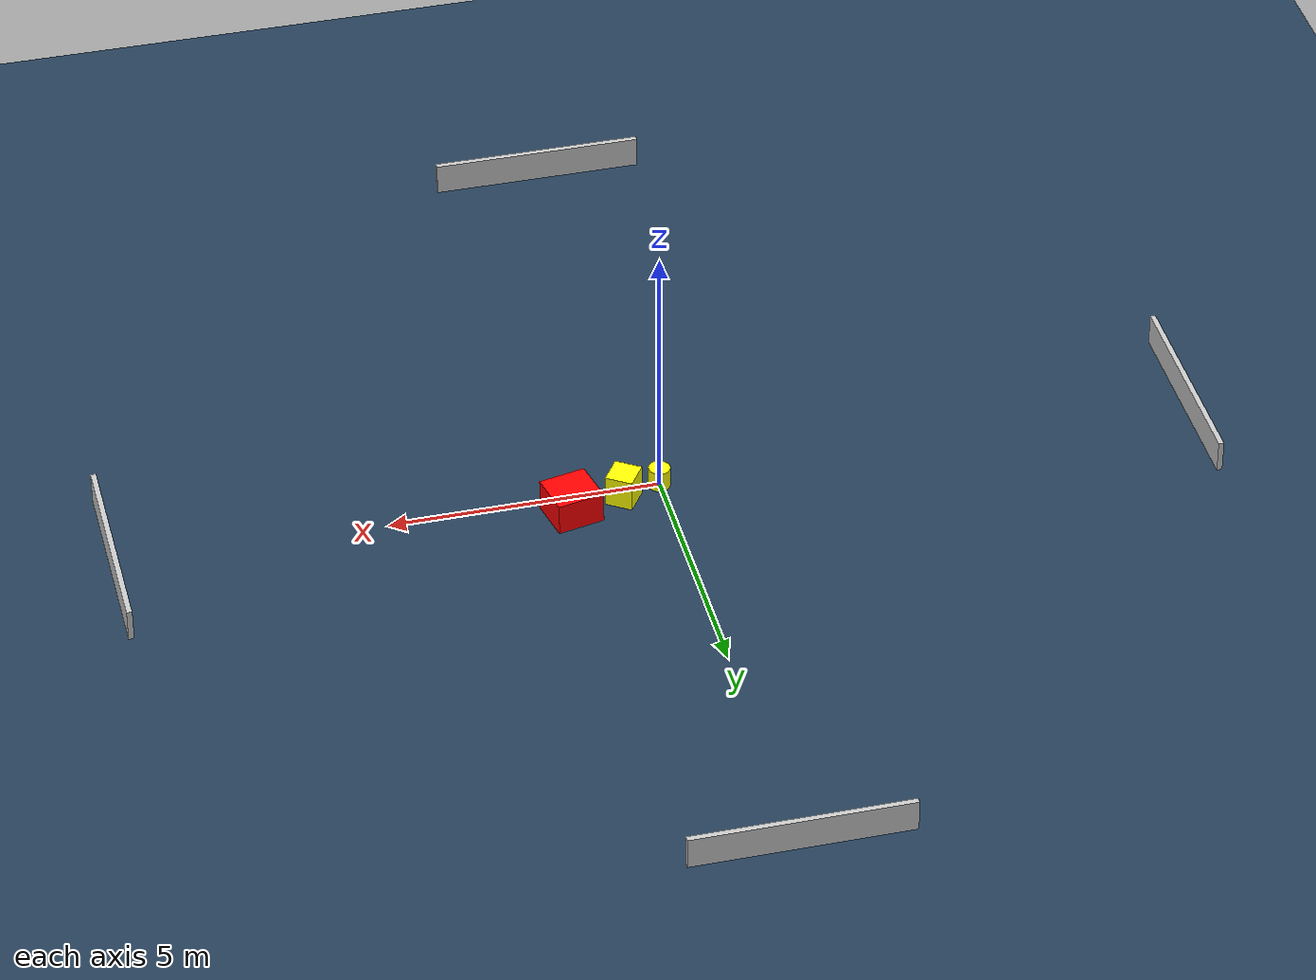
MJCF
<?xml version="1.0" ?>
<mujoco model="generated_environment">
  <option timestep="0.01" integrator="RK4" cone="elliptic"/>
  <default>
    <geom density="1"/>
  </default>
  <asset>
    <texture builtin="gradient" height="3072" name="skybox" rgb1="0.3 0.5 0.7" rgb2="0 0 0" type="skybox" width="512"/>
    <texture builtin="checker" height="300" name="groundplane" rgb1="0.2 0.3 0.4" rgb2="0.1 0.2 0.3" type="2d" width="300"/>
    <material name="groundplane" reflectance="0.2" texrepeat="5 5" texture="groundplane"/>
  </asset>
  <worldbody>
    <light dir="0 0 -1" directional="true" pos="0 0 1.5"/>
    <geom condim="3" friction="0.5 0.005 0.001" material="groundplane" name="floor" pos="0 0 0" size="0 0 0.05" type="plane"/>
    <body name="walls">
      <geom name="wall_1" condim="4" pos="-10.0 0.0 0.3" rgba="0.800000011920929 0.800000011920929 0.800000011920929 1.0" size="0.05 2.0 0.3" type="box"/>
      <geom name="wall_2" condim="4" pos="10.0 0.0 0.3" rgba="0.800000011920929 0.800000011920929 0.800000011920929 1.0" size="0.05 2.0 0.3" type="box"/>
      <geom name="wall_3" condim="4" pos="0.0 -10.0 0.3" rgba="0.800000011920929 0.800000011920929 0.800000011920929 1.0" size="2.0 0.05 0.3" type="box"/>
      <geom name="wall_4" condim="4" pos="0.0 10.0 0.3" rgba="0.800000011920929 0.800000011920929 0.800000011920929 1.0" size="2.0 0.05 0.3" type="box"/>
    </body>
    <body name="robot">
      <joint name="joint_x" type="slide" pos="0 0 0" axis="1 0 0"/>
      <joint name="joint_y" type="slide" pos="0 0 0" axis="0 1 0"/>
      <geom name="robot" type="cylinder" pos="0.0 0.0 0.2" size="0.2 0.2 0.0" mass="5.0" friction="1.0 0.005 0.0001" condim="4" rgba="1.0 1.0 0.0 1.0"/>
    </body>
    <body name="obstacle_1_movable">
      <geom name="obstacle_1_movable" condim="4" pos="0.7175163937049147 0.22964557652051854 0.3" euler="0 0 236.4925299108728" friction="0.0 0.005 0.001" rgba="1.0 1.0 0.0 1.0" size="0.26476869642312506 0.25564098910947414 0.3" type="box" mass="0.1"/>
      <joint type="free"/>
    </body>
    <body name="obstacle_2_static">
      <geom name="obstacle_2_static" condim="4" pos="1.731122600050859 0.44263752932224565 0.3" euler="0 0 282.25434172887225" friction="0.0 0.005 0.001" rgba="1.0 0.0 0.0 1.0" size="0.4140794178179322 0.44099878554586003 0.3" type="box"/>
    </body>
  </worldbody>
  <actuator>
    <motor name="actuator_x" joint="joint_x" gear="1" ctrlrange="-1 1"/>
    <motor name="actuator_y" joint="joint_y" gear="1" ctrlrange="-1 1"/>
  </actuator>
</mujoco>
